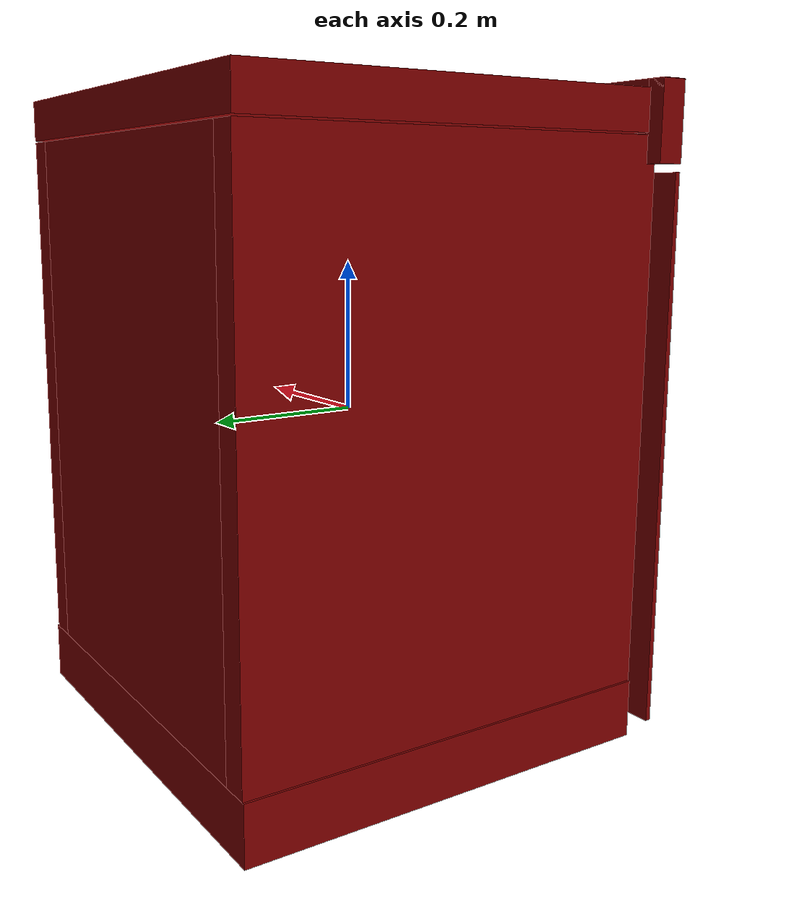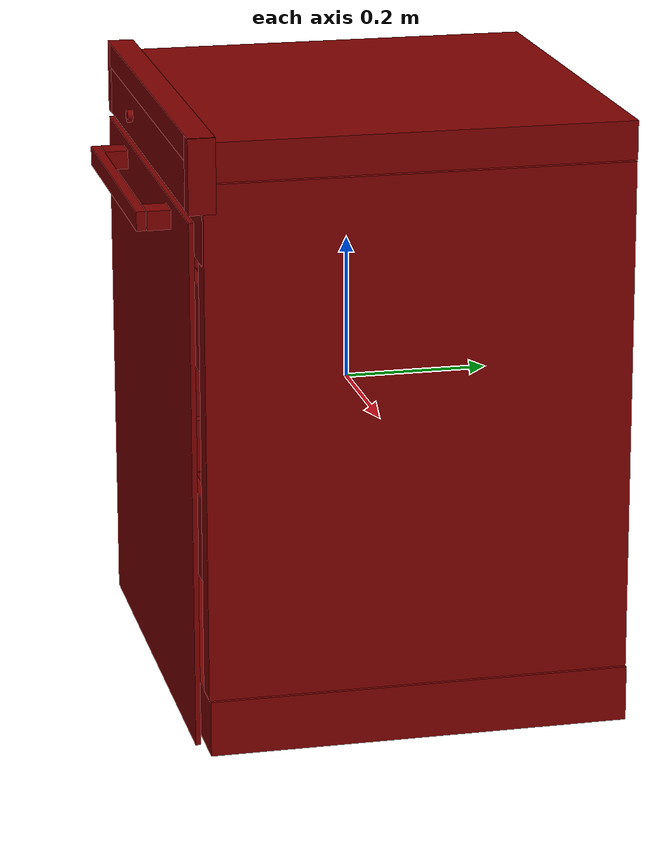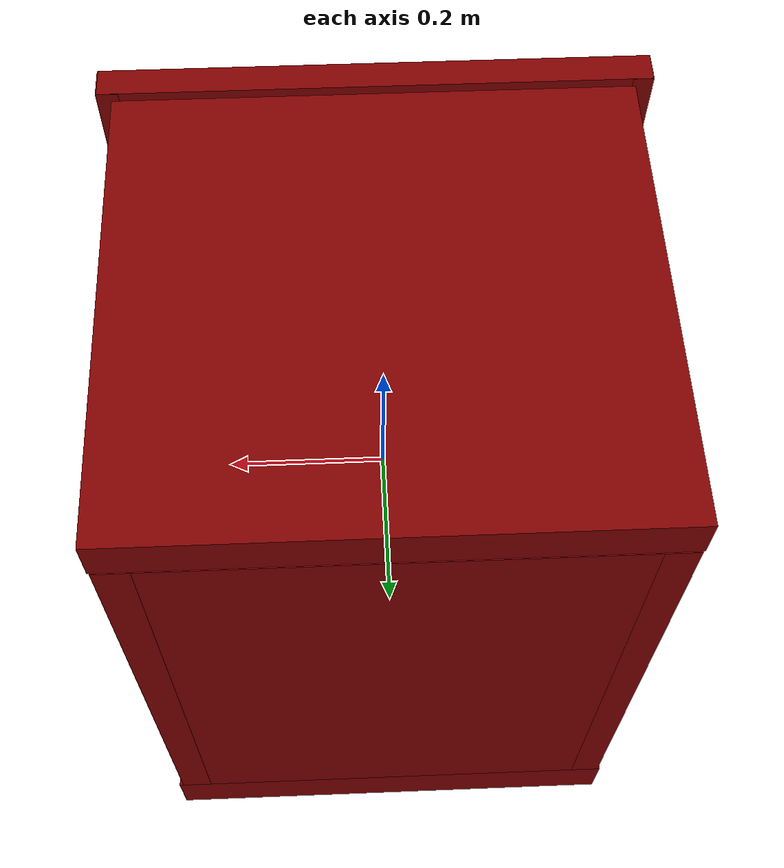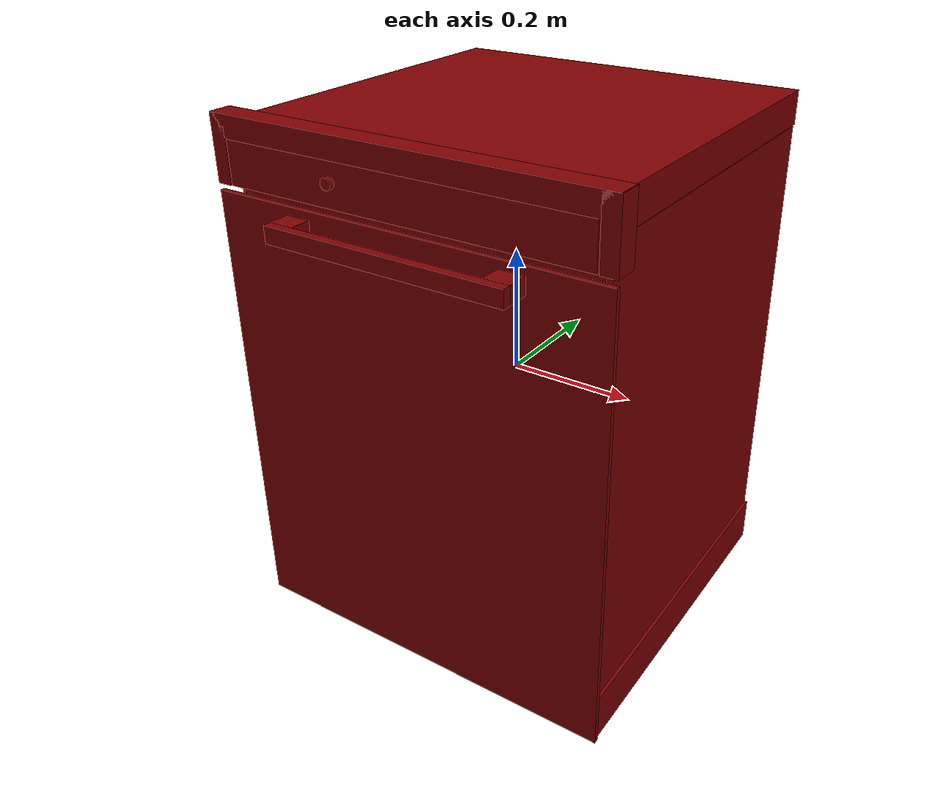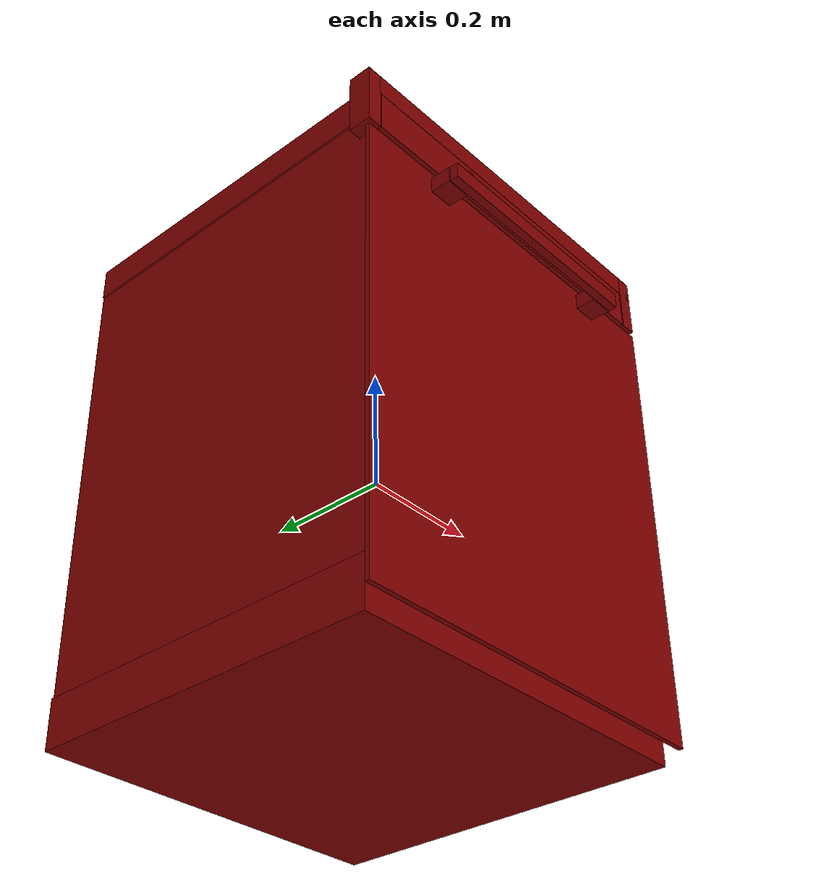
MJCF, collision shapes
<?xml version='1.0' encoding='UTF-8'?>
<mujoco model="model">
  <option timestep="0.002" gravity="0.0 0.0 -9.81"/>
  <compiler angle="radian"/>
  <asset>
    <mesh file="visuals/button_power.obj" name="button_power_vis"/>
    <mesh file="visuals/Body001.obj" name="Body001_vis"/>
    <mesh file="visuals/door.obj" name="door_vis"/>
    <mesh file="visuals/rack0.obj" name="rack0_vis"/>
    <mesh file="visuals/rack1.obj" name="rack1_vis"/>
    <texture file="visuals/T_BC001.png" name="Body001_material" type="2d"/>
    <material name="Body001_material" rgba="1 1 1 1.0" texture="Body001_material" shininess="0.5" specular="2"/>
    <texture file="visuals/T_BC001.png" name="button_power_material" type="2d"/>
    <material name="button_power_material" rgba="1 1 1 1.0" texture="button_power_material" shininess="0.5" specular="0.3103448502657381"/>
    <texture file="visuals/T_BC001.png" name="door_material" type="2d"/>
    <material name="door_material" rgba="1 1 1 1.0" texture="door_material" shininess="0.5" specular="2"/>
    <texture file="visuals/T_BC001.png" name="rack0_material" type="2d"/>
    <material name="rack0_material" rgba="1 1 1 1.0" texture="rack0_material" shininess="0.5" specular="3"/>
    <texture file="visuals/T_BC001.png" name="rack1_material" type="2d"/>
    <material name="rack1_material" rgba="1 1 1 1.0" texture="rack1_material" shininess="0.5" specular="3"/>
  </asset>
  <default>
    <default class="visual">
      <geom conaffinity="0" contype="0" group="1" type="mesh"/>
    </default>
    <default class="collision">
      <geom group="0" rgba="0.5 0 0 0.5"/>
    </default>
    <default class="spawn">
      <geom group="0" rgba="1 1 1 0.5" contype="0" conaffinity="0"/>
      <site group="0" rgba="1 1 1 0.5"/>
    </default>
    <default class="region">
      <geom group="1" conaffinity="0" contype="0" rgba="0 1 0 0"/>
    </default>
  </default>
  <worldbody>
    <body>
      <body name="object">
        <geom mesh="Body001_vis" type="mesh" solimp="0.998 0.998 0.001" solref="0.001 1" friction="0.95 0.3 0.1" class="visual" material="Body001_material"/>
        <geom class="collision" type="box" pos="-0.27744681 0.03434485 0.00563715" size="0.01871172897517681 0.2900102734565735 0.35477274656295776" quat="1.0 0.0 0.0 0.0"/>
        <geom class="collision" type="box" pos="0.27845126 0.03434550 0.00563617" size="0.019756343215703964 0.29000964760780334 0.35477179288864136" quat="1.0 0.0 0.0 0.0"/>
        <geom class="collision" type="box" pos="-0.00002010 0.29845773 0.00563521" size="0.2587113678455353 0.02589748241007328 0.35477080941200256" quat="1.0 0.0 0.0 0.0"/>
        <geom class="collision" type="box" pos="0.00122944 0.04150866 0.38936863" size="0.29874828457832336 0.2828465402126312 0.026516104117035866" quat="1.0 0.0 0.0 0.0"/>
        <geom class="collision" type="box" pos="0.00195497 0.03482511 -0.38782543" size="0.3012716770172119 0.2895262837409973 0.03868911787867546" quat="1.0 0.0 0.0 0.0"/>
        <geom class="collision" type="box" pos="0.30397323 -0.26002015 0.37586242" size="0.012740720994770527 0.018267527222633362 0.05019136518239975" quat="1.0 0.0 0.0 0.0"/>
        <geom class="collision" type="box" pos="-0.30561623 -0.26002021 0.37586224" size="0.011827376671135426 0.01826746016740799 0.05019117519259453" quat="1.0 0.0 0.0 0.0"/>
        <geom class="collision" type="box" pos="-0.00056751 -0.26002024 0.40926937" size="0.31625208258628845 0.018267419189214706 0.017225997522473335" quat="1.0 0.0 0.0 0.0"/>
        <geom class="collision" type="box" pos="-0.00108184 -0.26177146 0.36532900" size="0.29003623127937317 0.016382930800318718 0.038905803114175797" quat="1.0 0.0 0.0 0.0"/>
        <geom class="collision" type="box" pos="-0.00151254 0.00839412 0.29793108" size="0.2904619574546814 0.2648070156574249 0.04859800264239311" quat="1.0 0.0 0.0 0.0"/>
        <body name="button_power">
          <joint axis="0.0 1.0 0.0" pos="-0.10630446 -0.28030931 0.36291933" limited="true" name="button_power_joint" range="0.0 0.005" type="slide" damping="1" frictionloss="1" armature=".01" stiffness="4" springref="-1"/>
          <geom mesh="button_power_vis" type="mesh" solimp="0.998 0.998 0.001" solref="0.001 1" friction="0.95 0.3 0.1" class="visual" material="button_power_material"/>
          <geom class="collision" type="cylinder" pos="-0.10626438 -0.28291623 0.36289817" size="0.008747451938688755 0.0036253384314477444" quat="0.7071067094802856 0.7071068286895752 0.0 0.0"/>
        </body>
        <body name="door">
          <joint axis="1.0 0.0 0.0" pos="-0.00080707 -0.2779563878584522 -0.4031739406994629" limited="true" name="door_joint" range="0.0 0.6735987755982988" type="hinge" damping="1" frictionloss="10" armature="1" stiffness="2"/>
          <geom mesh="door_vis" type="mesh" solimp="0.998 0.998 0.001" solref="0.001 1" friction="0.95 0.3 0.1" class="visual" material="door_material"/>
          <geom class="collision" type="box" pos="-0.00080707 -0.27444758 -0.04381563" size="0.3159978985786438 0.003508807858452201 0.3593583106994629" quat="1.0 0.0 0.0 0.0" name="door_main"/>
          <geom class="collision" type="box" pos="-0.16862121 -0.29529719 0.29038149" size="0.019509293138980865 0.01602223701775074 0.013016545213758945" quat="1.0 0.0 0.0 0.0"/>
          <geom class="collision" type="box" pos="0.17543566 -0.29529719 0.29038149" size="0.019509293138980865 0.01602225750684738 0.0130164735019207" quat="1.0 0.0 0.0 0.0"/>
          <geom class="collision" type="box" pos="0.00407582 -0.31881963 0.29038149" size="0.1908607929944992 0.006684408988803625 0.013014587573707104" quat="1.0 0.0 0.0 0.0" name="door_handle_main"/>
        </body>
        <body name="rack0">
          <geom class="region" name="reg_rack0" type="box" pos="2.4250000000003435e-06 0.008271850000000011 -0.091404085" size="0.230403445 0.22257833999999999 0.142612145"/>
          <joint axis="0.0 -1.0 0.0" pos="0.00059565 0.00748176 -0.18291299" limited="true" name="rack0_joint" range="0.0 0.4" type="slide" damping="1" frictionloss="1" armature=".01" stiffness="0.05"/>
          <geom mesh="rack0_vis" type="mesh" solimp="0.998 0.998 0.001" solref="0.001 1" friction="0.95 0.3 0.1" class="visual" material="rack0_material"/>
          <geom class="collision" type="box" pos="-0.24413794 0.00733596 -0.18468167" size="0.009003601968288422 0.22898779809474945 0.05753149092197418" quat="1.0 0.0 0.0 0.0"/>
          <geom class="collision" type="box" pos="-0.10272104 0.00733596 -0.20200799" size="0.002201681025326252 0.22898779809474945 0.04020516201853752" quat="1.0 0.0 0.0 0.0"/>
          <geom class="collision" type="box" pos="-0.04830473 0.00733596 -0.20200799" size="0.002201681025326252 0.22898779809474945 0.04020516201853752" quat="1.0 0.0 0.0 0.0"/>
          <geom class="collision" type="box" pos="0.00562036 0.00733596 -0.20200799" size="0.002201681025326252 0.22898779809474945 0.04020516201853752" quat="1.0 0.0 0.0 0.0"/>
          <geom class="collision" type="box" pos="0.05967168 0.00733596 -0.20200799" size="0.002201681025326252 0.22898779809474945 0.04020516201853752" quat="1.0 0.0 0.0 0.0"/>
          <geom class="collision" type="box" pos="0.11370233 0.00733596 -0.20200799" size="0.002201681025326252 0.22898779809474945 0.04020516201853752" quat="1.0 0.0 0.0 0.0"/>
          <geom class="collision" type="box" pos="0.00051222 0.00733596 -0.24096282" size="0.24039435386657715 0.22898779809474945 0.002449918305501342" quat="1.0 0.0 0.0 0.0"/>
          <geom class="collision" type="box" pos="0.00051222 0.24114866 -0.18277502" size="0.24039435386657715 0.00589787820354104 0.060637716203927994" quat="1.0 0.0 0.0 0.0"/>
          <geom class="collision" type="box" pos="0.24380726 0.00733596 -0.18468167" size="0.009003601968288422 0.22898779809474945 0.05753149092197418" quat="1.0 0.0 0.0 0.0"/>
          <geom class="collision" type="box" pos="0.00051222 -0.22523445 -0.18277502" size="0.24039435386657715 0.0063860309310257435 0.060637716203927994" quat="1.0 0.0 0.0 0.0"/>
        </body>
        <body name="rack1">
          <geom class="region" name="reg_rack1" type="box" pos="-0.0001491599999999954 0.008189715 0.15403375" size="0.23079571 0.22288287499999998 0.08846139"/>
          <joint axis="0.0 -1.0 0.0" pos="0.00059565 0.00748176 0.08019561" limited="true" name="rack1_joint" range="0.0 0.4" type="slide" damping="1" frictionloss="1" armature=".01" stiffness="0.05"/>
          <geom mesh="rack1_vis" type="mesh" solimp="0.998 0.998 0.001" solref="0.001 1" friction="0.95 0.3 0.1" class="visual" material="rack1_material"/>
          <geom class="collision" type="box" pos="0.00051222 -0.22523445 0.11811550" size="0.24039435386657715 0.0063860309310257435 0.060637716203927994" quat="1.0 0.0 0.0 0.0"/>
          <geom class="collision" type="box" pos="0.00051222 0.24114866 0.11811550" size="0.24039435386657715 0.00589787820354104 0.060637716203927994" quat="1.0 0.0 0.0 0.0"/>
          <geom class="collision" type="box" pos="0.00051222 0.00733596 0.05992770" size="0.24039435386657715 0.22898779809474945 0.002449918305501342" quat="1.0 0.0 0.0 0.0"/>
          <geom class="collision" type="box" pos="0.11128847 0.00733596 0.09888252" size="0.002201681025326252 0.22898779809474945 0.04020516201853752" quat="1.0 0.0 0.0 0.0"/>
          <geom class="collision" type="box" pos="0.05725781 0.00733596 0.09888252" size="0.002201681025326252 0.22898779809474945 0.04020516201853752" quat="1.0 0.0 0.0 0.0"/>
          <geom class="collision" type="box" pos="0.00320649 0.00733596 0.09888252" size="0.002201681025326252 0.22898779809474945 0.04020516201853752" quat="1.0 0.0 0.0 0.0"/>
          <geom class="collision" type="box" pos="-0.05071860 0.00733596 0.09888252" size="0.002201681025326252 0.22898779809474945 0.04020516201853752" quat="1.0 0.0 0.0 0.0"/>
          <geom class="collision" type="box" pos="-0.10513490 0.00733596 0.09888252" size="0.002201681025326252 0.22898779809474945 0.04020516201853752" quat="1.0 0.0 0.0 0.0"/>
          <geom class="collision" type="box" pos="-0.24413794 0.00733596 0.11620885" size="0.009003601968288422 0.22898779809474945 0.05753149092197418" quat="1.0 0.0 0.0 0.0"/>
          <geom class="collision" type="box" pos="0.24380726 0.00733596 0.11620885" size="0.009003601968288422 0.22898779809474945 0.05753149092197418" quat="1.0 0.0 0.0 0.0"/>
        </body>
        <geom class="region" name="reg_int" type="box" pos="0.00021619999999999973 0.007632504999999984 -0.050511795" size="0.25421202 0.25948114499999997 0.292664605"/>
        <geom class="region" name="reg_main" type="box" pos="5.014999999997105e-06 0.02303382499999998 -3.00000000119649e-08" size="0.320163415 0.302321325 0.42751522"/>
      </body>
    </body>
  </worldbody>
  <actuator>
    <motor name="button_power_joint_actuator" joint="button_power_joint" gear="0.5"/>
    <motor name="door_joint_actuator" joint="door_joint" gear="50"/>
    <motor name="rack0_joint_actuator" joint="rack0_joint" gear="50"/>
    <motor name="rack1_joint_actuator" joint="rack1_joint" gear="50"/>
  </actuator>
</mujoco>
